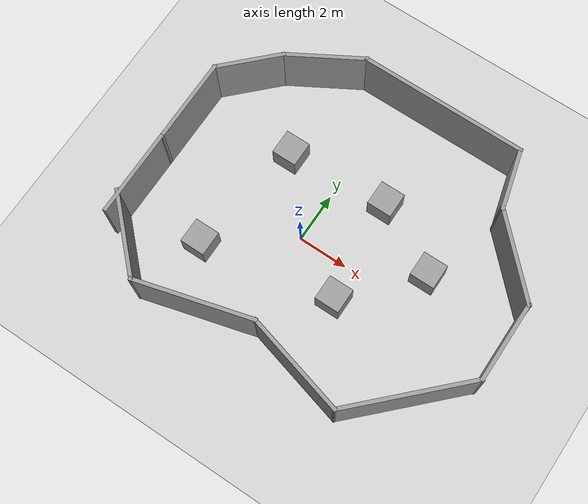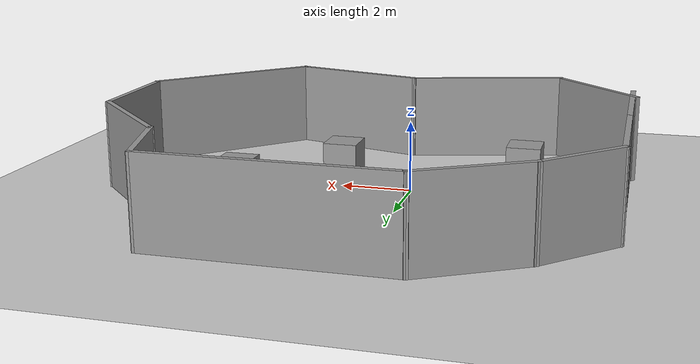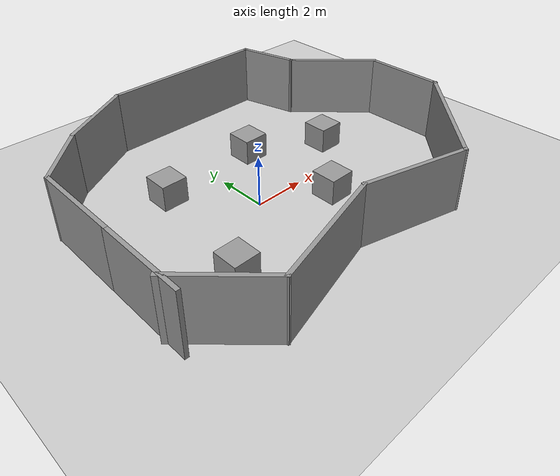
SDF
<sdf version="1.7">
 <world name="default">
  <light name="sun" type="directional">
   <pose>0 0 10 0 -0 0</pose>
   <diffuse>0.8 0.8 0.8 1</diffuse>
   <specular>0.2 0.2 0.2 1</specular>
   <attenuation>
    <range>1000</range>
    <constant>0.9</constant>
    <linear>0.01</linear>
    <quadratic>0.001</quadratic>
   </attenuation>
   <direction>-0.5 0.1 -0.9</direction>
   <spot><inner_angle>0</inner_angle><outer_angle>0</outer_angle><falloff>0</falloff></spot>
  </light>
  <model name="ground_plane">
   <static>1</static>
   <link name="link">
    <collision name="collision">
     <geometry><plane><normal>0 0 1</normal><size>100 100</size></plane></geometry>
     <surface>
      <contact><collide_bitmask>65535</collide_bitmask></contact>
      <friction><ode><mu>100</mu><mu2>50</mu2></ode></friction>
     </surface>
    </collision>
    <visual name="visual">
     <cast_shadows>0</cast_shadows>
     <geometry><plane><normal>0 0 1</normal><size>100 100</size></plane></geometry>
     <material>
      <script><uri>file://media/materials/scripts/gazebo.material</uri><name>Gazebo/Grey</name></script>
     </material>
    </visual>
   </link>
  </model>
  <gravity>0 0 -9.8</gravity>
  <magnetic_field>6e-06 2.3e-05 -4.2e-05</magnetic_field>
  <atmosphere type="adiabatic"/>
  <physics type="ode">
   <max_step_size>0.001</max_step_size>
   <real_time_factor>1</real_time_factor>
   <real_time_update_rate>1000</real_time_update_rate>
  </physics>
  <scene><ambient>0.4 0.4 0.4 1</ambient><background>0.7 0.7 0.7 1</background><shadows>1</shadows></scene>
  <audio><device>default</device></audio>
  <spherical_coordinates>
   <surface_model>EARTH_WGS84</surface_model>
   <latitude_deg>0</latitude_deg>
   <longitude_deg>0</longitude_deg>
   <elevation>0</elevation>
   <heading_deg>0</heading_deg>
  </spherical_coordinates>
  <model name="Untitled">
   <model name="ugv_env">
    <pose>1e-06 0 0 0 -0 0</pose>
    <link name="Wall_0">
     <collision name="Wall_0_Collision">
      <geometry><box><size>3.5 0.15 2.5</size></box></geometry>
      <pose>0 0 1.25 0 -0 0</pose>
     </collision>
     <visual name="Wall_0_Visual">
      <pose>0 0 1.25 0 -0 0</pose>
      <geometry><box><size>3.5 0.15 2.5</size></box></geometry>
      <material>
       <script><uri>file://media/materials/scripts/gazebo.material</uri><name>Gazebo/Grey</name></script>
       <ambient>1 1 1 1</ambient>
      </material>
      <meta><layer>0</layer></meta>
     </visual>
     <pose>-7.08766 -2.58609 0 0 -0 -1.5708</pose>
    </link>
    <link name="Wall_10">
     <collision name="Wall_10_Collision">
      <geometry><box><size>4.25 0.15 2.5</size></box></geometry>
      <pose>0 0 1.25 0 -0 0</pose>
     </collision>
     <visual name="Wall_10_Visual">
      <pose>0 0 1.25 0 -0 0</pose>
      <geometry><box><size>4.25 0.15 2.5</size></box></geometry>
      <material>
       <script><uri>file://media/materials/scripts/gazebo.material</uri><name>Gazebo/Grey</name></script>
       <ambient>1 1 1 1</ambient>
      </material>
      <meta><layer>0</layer></meta>
     </visual>
     <pose>1.60291 -5.16379 0 0 -0 2.87979</pose>
    </link>
    <link name="Wall_11">
     <collision name="Wall_11_Collision">
      <geometry><box><size>4.75 0.15 2.5</size></box></geometry>
      <pose>0 0 1.25 0 -0 0</pose>
     </collision>
     <visual name="Wall_11_Visual">
      <pose>0 0 1.25 0 -0 0</pose>
      <geometry><box><size>4.75 0.15 2.5</size></box></geometry>
      <material>
       <script><uri>file://media/materials/scripts/gazebo.material</uri><name>Gazebo/Grey</name></script>
       <ambient>1 1 1 1</ambient>
      </material>
      <meta><layer>0</layer></meta>
     </visual>
     <pose>-2.59887 -5.22849 0 0 -0 -2.87979</pose>
    </link>
    <link name="Wall_12">
     <collision name="Wall_12_Collision">
      <geometry><box><size>3.5 0.15 2.5</size></box></geometry>
      <pose>0 0 1.25 0 -0 0</pose>
     </collision>
     <visual name="Wall_12_Visual">
      <pose>0 0 1.25 0 -0 0</pose>
      <geometry><box><size>3.5 0.15 2.5</size></box></geometry>
      <material>
       <script><uri>file://media/materials/scripts/gazebo.material</uri><name>Gazebo/Grey</name></script>
       <ambient>1 1 1 1</ambient>
      </material>
      <meta><layer>0</layer></meta>
     </visual>
     <pose>-6.0049 -4.63937 0 0 -0 2.35619</pose>
    </link>
    <link name="Wall_2">
     <collision name="Wall_2_Collision">
      <geometry><box><size>3.5 0.15 2.5</size></box></geometry>
      <pose>0 0 1.25 0 -0 0</pose>
     </collision>
     <visual name="Wall_2_Visual">
      <pose>0 0 1.25 0 -0 0</pose>
      <geometry><box><size>3.5 0.15 2.5</size></box></geometry>
      <material>
       <script><uri>file://media/materials/scripts/gazebo.material</uri><name>Gazebo/Grey</name></script>
       <ambient>1 1 1 1</ambient>
      </material>
      <meta><layer>0</layer></meta>
     </visual>
     <pose>-7.08766 0.763912 0 0 -0 1.5708</pose>
    </link>
    <link name="Wall_3">
     <collision name="Wall_3_Collision">
      <geometry><box><size>2.75 0.15 2.5</size></box></geometry>
      <pose>0 0 1.25 0 -0 0</pose>
     </collision>
     <visual name="Wall_3_Visual">
      <pose>0 0 1.25 0 -0 0</pose>
      <geometry><box><size>2.75 0.15 2.5</size></box></geometry>
      <material>
       <script><uri>file://media/materials/scripts/gazebo.material</uri><name>Gazebo/Grey</name></script>
       <ambient>1 1 1 1</ambient>
      </material>
      <meta><layer>0</layer></meta>
     </visual>
     <pose>-6.16842 3.35815 0 0 -0 0.785398</pose>
    </link>
    <link name="Wall_4">
     <collision name="Wall_4_Collision">
      <geometry><box><size>3.25 0.15 2.5</size></box></geometry>
      <pose>0 0 1.25 0 -0 0</pose>
     </collision>
     <visual name="Wall_4_Visual">
      <pose>0 0 1.25 0 -0 0</pose>
      <geometry><box><size>3.25 0.15 2.5</size></box></geometry>
      <material>
       <script><uri>file://media/materials/scripts/gazebo.material</uri><name>Gazebo/Grey</name></script>
       <ambient>1 1 1 1</ambient>
      </material>
      <meta><layer>0</layer></meta>
     </visual>
     <pose>-3.90685 5.05239 0 0 -0 0.523599</pose>
    </link>
    <link name="Wall_5">
     <collision name="Wall_5_Collision">
      <geometry><box><size>6.75 0.15 2.5</size></box></geometry>
      <pose>0 0 1.25 0 -0 0</pose>
     </collision>
     <visual name="Wall_5_Visual">
      <pose>0 0 1.25 0 -0 0</pose>
      <geometry><box><size>6.75 0.15 2.5</size></box></geometry>
      <material>
       <script><uri>file://media/materials/scripts/gazebo.material</uri><name>Gazebo/Grey</name></script>
       <ambient>1 1 1 1</ambient>
      </material>
      <meta><layer>0</layer></meta>
     </visual>
     <pose>0.735494 5.82739 0 0 -0 0</pose>
    </link>
    <link name="Wall_6">
     <collision name="Wall_6_Collision">
      <geometry><box><size>2.5 0.15 2.5</size></box></geometry>
      <pose>0 0 1.25 0 -0 0</pose>
     </collision>
     <visual name="Wall_6_Visual">
      <pose>0 0 1.25 0 -0 0</pose>
      <geometry><box><size>2.5 0.15 2.5</size></box></geometry>
      <material>
       <script><uri>file://media/materials/scripts/gazebo.material</uri><name>Gazebo/Grey</name></script>
       <ambient>1 1 1 1</ambient>
      </material>
      <meta><layer>0</layer></meta>
     </visual>
     <pose>4.33961 4.69243 0 0 -0 -1.309</pose>
    </link>
    <link name="Wall_7">
     <collision name="Wall_7_Collision">
      <geometry><box><size>3.75 0.15 2.5</size></box></geometry>
      <pose>0 0 1.25 0 -0 0</pose>
     </collision>
     <visual name="Wall_7_Visual">
      <pose>0 0 1.25 0 -0 0</pose>
      <geometry><box><size>3.75 0.15 2.5</size></box></geometry>
      <material>
       <script><uri>file://media/materials/scripts/gazebo.material</uri><name>Gazebo/Grey</name></script>
       <ambient>1 1 1 1</ambient>
      </material>
      <meta><layer>0</layer></meta>
     </visual>
     <pose>5.91651 2.28467 0 0 -0 -0.785398</pose>
    </link>
    <link name="Wall_8">
     <collision name="Wall_8_Collision">
      <geometry><box><size>3.25 0.15 2.5</size></box></geometry>
      <pose>0 0 1.25 0 -0 0</pose>
     </collision>
     <visual name="Wall_8_Visual">
      <pose>0 0 1.25 0 -0 0</pose>
      <geometry><box><size>3.25 0.15 2.5</size></box></geometry>
      <material>
       <script><uri>file://media/materials/scripts/gazebo.material</uri><name>Gazebo/Grey</name></script>
       <ambient>1 1 1 1</ambient>
      </material>
      <meta><layer>0</layer></meta>
     </visual>
     <pose>7.1893 -0.538121 0 0 -0 -1.5708</pose>
    </link>
    <link name="Wall_9">
     <collision name="Wall_9_Collision">
      <geometry><box><size>5.25 0.15 2.5</size></box></geometry>
      <pose>0 0 1.25 0 -0 0</pose>
     </collision>
     <visual name="Wall_9_Visual">
      <pose>0 0 1.25 0 -0 0</pose>
      <geometry><box><size>5.25 0.15 2.5</size></box></geometry>
      <material>
       <script><uri>file://media/materials/scripts/gazebo.material</uri><name>Gazebo/Grey</name></script>
       <ambient>1 1 1 1</ambient>
      </material>
      <meta><layer>0</layer></meta>
     </visual>
     <pose>5.38618 -3.89124 0 0 -0 -2.35619</pose>
    </link>
    <static>1</static>
   </model>
   <static>0</static>
   <pose>1.16958 0.717133 0 0 -0 0</pose>
  </model>
  <model name="unit_box">
   <pose>-2.94892 -2.22978 0.5 0 -0 0</pose>
   <link name="link">
    <inertial>
     <mass>1</mass>
     <inertia>
      <ixx>0.166667</ixx>
      <ixy>0</ixy>
      <ixz>0</ixz>
      <iyy>0.166667</iyy>
      <iyz>0</iyz>
      <izz>0.166667</izz>
     </inertia>
    </inertial>
    <collision name="collision"><geometry><box><size>1 1 1</size></box></geometry></collision>
    <visual name="visual">
     <geometry><box><size>1 1 1</size></box></geometry>
     <material>
      <script><name>Gazebo/Grey</name><uri>file://media/materials/scripts/gazebo.material</uri></script>
     </material>
    </visual>
   </link>
  </model>
  <model name="unit_box_0">
   <pose>1.94873 2.78202 0.5 0 -0 0</pose>
   <link name="link">
    <inertial>
     <mass>1</mass>
     <inertia>
      <ixx>0.166667</ixx>
      <ixy>0</ixy>
      <ixz>0</ixz>
      <iyy>0.166667</iyy>
      <iyz>0</iyz>
      <izz>0.166667</izz>
     </inertia>
    </inertial>
    <collision name="collision"><geometry><box><size>1 1 1</size></box></geometry></collision>
    <visual name="visual">
     <geometry><box><size>1 1 1</size></box></geometry>
     <material>
      <script><name>Gazebo/Grey</name><uri>file://media/materials/scripts/gazebo.material</uri></script>
     </material>
    </visual>
   </link>
  </model>
  <model name="unit_box_1">
   <pose>-2.12565 2.52206 0.5 0 -0 0</pose>
   <link name="link">
    <inertial>
     <mass>1</mass>
     <inertia>
      <ixx>0.166667</ixx>
      <ixy>0</ixy>
      <ixz>0</ixz>
      <iyy>0.166667</iyy>
      <iyz>0</iyz>
      <izz>0.166667</izz>
     </inertia>
    </inertial>
    <collision name="collision"><geometry><box><size>1 1 1</size></box></geometry></collision>
    <visual name="visual">
     <geometry><box><size>1 1 1</size></box></geometry>
     <material>
      <script><name>Gazebo/Grey</name><uri>file://media/materials/scripts/gazebo.material</uri></script>
     </material>
    </visual>
   </link>
  </model>
  <model name="unit_box_2">
   <pose>2.34398 -1.32319 0.5 0 -0 0</pose>
   <link name="link">
    <inertial>
     <mass>1</mass>
     <inertia>
      <ixx>0.166667</ixx>
      <ixy>0</ixy>
      <ixz>0</ixz>
      <iyy>0.166667</iyy>
      <iyz>0</iyz>
      <izz>0.166667</izz>
     </inertia>
    </inertial>
    <collision name="collision"><geometry><box><size>1 1 1</size></box></geometry></collision>
    <visual name="visual">
     <geometry><box><size>1 1 1</size></box></geometry>
     <material>
      <script><name>Gazebo/Grey</name><uri>file://media/materials/scripts/gazebo.material</uri></script>
     </material>
    </visual>
   </link>
  </model>
  <model name="unit_box_3">
   <pose>4.71777 1.32827 0.5 0 -0 0</pose>
   <link name="link">
    <inertial>
     <mass>1</mass>
     <inertia>
      <ixx>0.166667</ixx>
      <ixy>0</ixy>
      <ixz>0</ixz>
      <iyy>0.166667</iyy>
      <iyz>0</iyz>
      <izz>0.166667</izz>
     </inertia>
    </inertial>
    <collision name="collision"><geometry><box><size>1 1 1</size></box></geometry></collision>
    <visual name="visual">
     <geometry><box><size>1 1 1</size></box></geometry>
     <material>
      <script><name>Gazebo/Grey</name><uri>file://media/materials/scripts/gazebo.material</uri></script>
     </material>
    </visual>
   </link>
  </model>
 </world>
</sdf>
